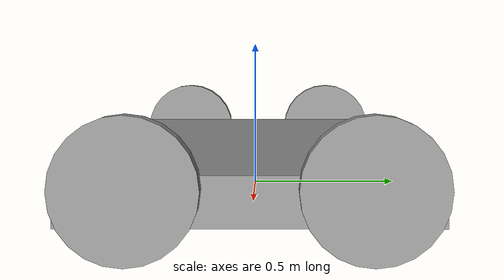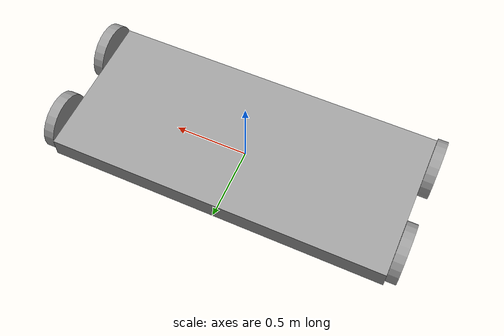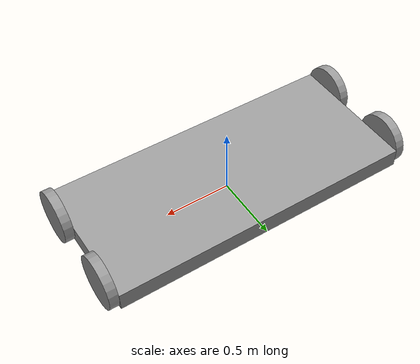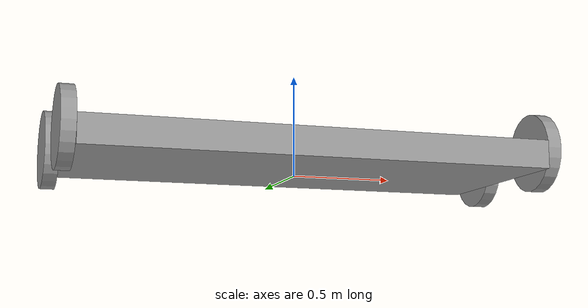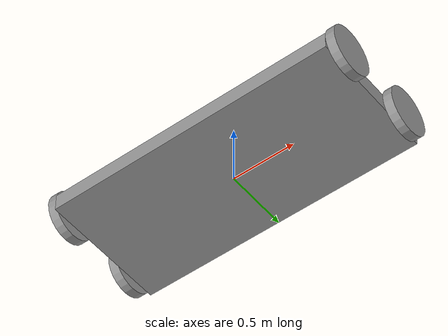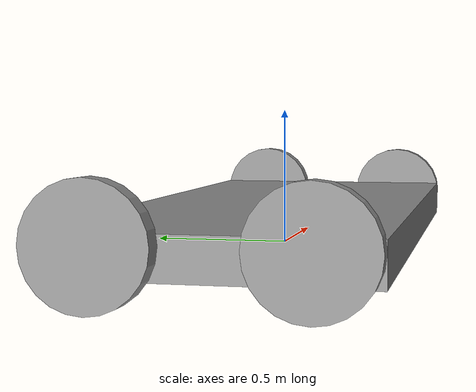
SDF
<?xml version='1.0'?>
<sdf version='1.7'>
  <model name='cart'>
    <link name='Cart'>
      <inertial>
        <mass>0.323225</mass>
        <inertia>
          <ixx>0.0288014</ixx>
          <ixy>0</ixy>
          <ixz>0</ixz>
          <iyy>0.139331</iyy>
          <iyz>0</iyz>
          <izz>0.167093</izz>
        </inertia>
        <pose>0 0 0 0 -0 0</pose>
      </inertial>
      <pose>1e-06 -0 0.087098 0 -0 0</pose>
      <gravity>1</gravity>
      <self_collide>0</self_collide>
      <kinematic>0</kinematic>
      <enable_wind>0</enable_wind>
      <visual name='visual'>
        <pose>0 0 0 0 -0 0</pose>
        <geometry>
          <box>
            <size>2.27013 1.02468 0.138944</size>
          </box>
        </geometry>
        <material>
          <lighting>1</lighting>
          <script>
            <uri>file://media/materials/scripts/gazebo.material</uri>
            <name>Gazebo/Grey</name>
          </script>
          <shader type='pixel'>
            <normal_map>__default__</normal_map>
          </shader>
          <ambient>0.3 0.3 0.3 1</ambient>
          <diffuse>0.7 0.7 0.7 1</diffuse>
          <specular>0.01 0.01 0.01 1</specular>
          <emissive>0 0 0 1</emissive>
        </material>
        <transparency>0</transparency>
        <cast_shadows>1</cast_shadows>
      </visual>
      <collision name='collision'>
        <laser_retro>0</laser_retro>
        <max_contacts>10</max_contacts>
        <pose>0 0 0 0 -0 0</pose>
        <geometry>
          <box>
            <size>2.27013 1.02468 0.138944</size>
          </box>
        </geometry>
        <surface>
          <friction>
            <ode>
              <mu>1</mu>
              <mu2>1</mu2>
              <fdir1>0 0 0</fdir1>
              <slip1>0</slip1>
              <slip2>0</slip2>
            </ode>
            <torsional>
              <coefficient>1</coefficient>
              <patch_radius>0</patch_radius>
              <surface_radius>0</surface_radius>
              <use_patch_radius>1</use_patch_radius>
              <ode>
                <slip>0</slip>
              </ode>
            </torsional>
          </friction>
          <bounce>
            <restitution_coefficient>0</restitution_coefficient>
            <threshold>1e+06</threshold>
          </bounce>
          <contact>
            <collide_without_contact>0</collide_without_contact>
            <collide_without_contact_bitmask>1</collide_without_contact_bitmask>
            <collide_bitmask>1</collide_bitmask>
            <ode>
              <soft_cfm>0</soft_cfm>
              <soft_erp>0.2</soft_erp>
              <kp>1e+13</kp>
              <kd>1</kd>
              <max_vel>0.01</max_vel>
              <min_depth>0</min_depth>
            </ode>
            <bullet>
              <split_impulse>1</split_impulse>
              <split_impulse_penetration_threshold>-0.01</split_impulse_penetration_threshold>
              <soft_cfm>0</soft_cfm>
              <soft_erp>0.2</soft_erp>
              <kp>1e+13</kp>
              <kd>1</kd>
            </bullet>
          </contact>
        </surface>
      </collision>
    </link>
    <link name='LeftWheelFree'>
      <inertial>
        <mass>0.0104167</mass>
        <inertia>
          <ixx>0.000101722</ixx>
          <ixy>0</ixy>
          <ixz>0</ixz>
          <iyy>0.000101722</iyy>
          <iyz>0</iyz>
          <izz>0.000195047</izz>
        </inertia>
        <pose>0 0 0 0 -0 0</pose>
      </inertial>
      <pose>1.16984 0.318823 0.122361 1e-06 1.57079 1e-06</pose>
      <gravity>1</gravity>
      <self_collide>0</self_collide>
      <kinematic>0</kinematic>
      <enable_wind>0</enable_wind>
      <visual name='visual'>
        <pose>0 0 0 0 -0 0</pose>
        <geometry>
          <cylinder>
            <radius>0.193517</radius>
            <length>0.0695489</length>
          </cylinder>
        </geometry>
        <material>
          <lighting>1</lighting>
          <script>
            <uri>file://media/materials/scripts/gazebo.material</uri>
            <name>Gazebo/Grey</name>
          </script>
          <shader type='pixel'>
            <normal_map>__default__</normal_map>
          </shader>
          <ambient>0.3 0.3 0.3 1</ambient>
          <diffuse>0.7 0.7 0.7 1</diffuse>
          <specular>0.01 0.01 0.01 1</specular>
          <emissive>0 0 0 1</emissive>
        </material>
        <transparency>0</transparency>
        <cast_shadows>1</cast_shadows>
      </visual>
      <collision name='collision'>
        <laser_retro>0</laser_retro>
        <max_contacts>10</max_contacts>
        <pose>0 0 0 0 -0 0</pose>
        <geometry>
          <cylinder>
            <radius>0.193517</radius>
            <length>0.069549</length>
          </cylinder>
        </geometry>
        <surface>
          <friction>
            <ode>
              <mu>1</mu>
              <mu2>1</mu2>
              <fdir1>0 0 0</fdir1>
              <slip1>0</slip1>
              <slip2>0</slip2>
            </ode>
            <torsional>
              <coefficient>1</coefficient>
              <patch_radius>0</patch_radius>
              <surface_radius>0</surface_radius>
              <use_patch_radius>1</use_patch_radius>
              <ode>
                <slip>0</slip>
              </ode>
            </torsional>
          </friction>
          <bounce>
            <restitution_coefficient>0</restitution_coefficient>
            <threshold>1e+06</threshold>
          </bounce>
          <contact>
            <collide_without_contact>0</collide_without_contact>
            <collide_without_contact_bitmask>1</collide_without_contact_bitmask>
            <collide_bitmask>1</collide_bitmask>
            <ode>
              <soft_cfm>0</soft_cfm>
              <soft_erp>0.2</soft_erp>
              <kp>1e+13</kp>
              <kd>1</kd>
              <max_vel>0.01</max_vel>
              <min_depth>0</min_depth>
            </ode>
            <bullet>
              <split_impulse>1</split_impulse>
              <split_impulse_penetration_threshold>-0.01</split_impulse_penetration_threshold>
              <soft_cfm>0</soft_cfm>
              <soft_erp>0.2</soft_erp>
              <kp>1e+13</kp>
              <kd>1</kd>
            </bullet>
          </contact>
        </surface>
      </collision>
    </link>
    <link name='LeftWheelMotor'>
      <inertial>
        <mass>0.0104167</mass>
        <inertia>
          <ixx>0.000101722</ixx>
          <ixy>0</ixy>
          <ixz>0</ixz>
          <iyy>0.000101722</iyy>
          <iyz>0</iyz>
          <izz>0.000195047</izz>
        </inertia>
        <pose>0 0 0 0 -0 0</pose>
      </inertial>
      <pose>1.16984 -0.318823 0.122362 1e-06 1.57079 1e-06</pose>
      <gravity>1</gravity>
      <self_collide>0</self_collide>
      <kinematic>0</kinematic>
      <enable_wind>0</enable_wind>
      <visual name='visual'>
        <pose>0 0 0 0 -0 0</pose>
        <geometry>
          <cylinder>
            <radius>0.193517</radius>
            <length>0.0695489</length>
          </cylinder>
        </geometry>
        <material>
          <lighting>1</lighting>
          <script>
            <uri>file://media/materials/scripts/gazebo.material</uri>
            <name>Gazebo/Grey</name>
          </script>
          <shader type='pixel'>
            <normal_map>__default__</normal_map>
          </shader>
          <ambient>0.3 0.3 0.3 1</ambient>
          <diffuse>0.7 0.7 0.7 1</diffuse>
          <specular>0.01 0.01 0.01 1</specular>
          <emissive>0 0 0 1</emissive>
        </material>
        <transparency>0</transparency>
        <cast_shadows>1</cast_shadows>
      </visual>
      <collision name='collision'>
        <laser_retro>0</laser_retro>
        <max_contacts>10</max_contacts>
        <pose>0 0 0 0 -0 0</pose>
        <geometry>
          <cylinder>
            <radius>0.193517</radius>
            <length>0.069549</length>
          </cylinder>
        </geometry>
        <surface>
          <friction>
            <ode>
              <mu>1</mu>
              <mu2>1</mu2>
              <fdir1>0 0 0</fdir1>
              <slip1>0</slip1>
              <slip2>0</slip2>
            </ode>
            <torsional>
              <coefficient>1</coefficient>
              <patch_radius>0</patch_radius>
              <surface_radius>0</surface_radius>
              <use_patch_radius>1</use_patch_radius>
              <ode>
                <slip>0</slip>
              </ode>
            </torsional>
          </friction>
          <bounce>
            <restitution_coefficient>0</restitution_coefficient>
            <threshold>1e+06</threshold>
          </bounce>
          <contact>
            <collide_without_contact>0</collide_without_contact>
            <collide_without_contact_bitmask>1</collide_without_contact_bitmask>
            <collide_bitmask>1</collide_bitmask>
            <ode>
              <soft_cfm>0</soft_cfm>
              <soft_erp>0.2</soft_erp>
              <kp>1e+13</kp>
              <kd>1</kd>
              <max_vel>0.01</max_vel>
              <min_depth>0</min_depth>
            </ode>
            <bullet>
              <split_impulse>1</split_impulse>
              <split_impulse_penetration_threshold>-0.01</split_impulse_penetration_threshold>
              <soft_cfm>0</soft_cfm>
              <soft_erp>0.2</soft_erp>
              <kp>1e+13</kp>
              <kd>1</kd>
            </bullet>
          </contact>
        </surface>
      </collision>
    </link>
    <link name='RightWheelFree'>
      <inertial>
        <mass>0.0104167</mass>
        <inertia>
          <ixx>0.000101722</ixx>
          <ixy>0</ixy>
          <ixz>0</ixz>
          <iyy>0.000101722</iyy>
          <iyz>0</iyz>
          <izz>0.000195047</izz>
        </inertia>
        <pose>0 0 0 0 -0 0</pose>
      </inertial>
      <pose>-1.16984 0.318823 0.122362 1e-06 1.57079 1e-06</pose>
      <gravity>1</gravity>
      <self_collide>0</self_collide>
      <kinematic>0</kinematic>
      <enable_wind>0</enable_wind>
      <visual name='visual'>
        <pose>0 0 0 0 -0 0</pose>
        <geometry>
          <cylinder>
            <radius>0.193517</radius>
            <length>0.0695489</length>
          </cylinder>
        </geometry>
        <material>
          <lighting>1</lighting>
          <script>
            <uri>file://media/materials/scripts/gazebo.material</uri>
            <name>Gazebo/Grey</name>
          </script>
          <shader type='pixel'>
            <normal_map>__default__</normal_map>
          </shader>
          <ambient>0.3 0.3 0.3 1</ambient>
          <diffuse>0.7 0.7 0.7 1</diffuse>
          <specular>0.01 0.01 0.01 1</specular>
          <emissive>0 0 0 1</emissive>
        </material>
        <transparency>0</transparency>
        <cast_shadows>1</cast_shadows>
      </visual>
      <collision name='collision'>
        <laser_retro>0</laser_retro>
        <max_contacts>10</max_contacts>
        <pose>0 0 0 0 -0 0</pose>
        <geometry>
          <cylinder>
            <radius>0.193517</radius>
            <length>0.069549</length>
          </cylinder>
        </geometry>
        <surface>
          <friction>
            <ode>
              <mu>1</mu>
              <mu2>1</mu2>
              <fdir1>0 0 0</fdir1>
              <slip1>0</slip1>
              <slip2>0</slip2>
            </ode>
            <torsional>
              <coefficient>1</coefficient>
              <patch_radius>0</patch_radius>
              <surface_radius>0</surface_radius>
              <use_patch_radius>1</use_patch_radius>
              <ode>
                <slip>0</slip>
              </ode>
            </torsional>
          </friction>
          <bounce>
            <restitution_coefficient>0</restitution_coefficient>
            <threshold>1e+06</threshold>
          </bounce>
          <contact>
            <collide_without_contact>0</collide_without_contact>
            <collide_without_contact_bitmask>1</collide_without_contact_bitmask>
            <collide_bitmask>1</collide_bitmask>
            <ode>
              <soft_cfm>0</soft_cfm>
              <soft_erp>0.2</soft_erp>
              <kp>1e+13</kp>
              <kd>1</kd>
              <max_vel>0.01</max_vel>
              <min_depth>0</min_depth>
            </ode>
            <bullet>
              <split_impulse>1</split_impulse>
              <split_impulse_penetration_threshold>-0.01</split_impulse_penetration_threshold>
              <soft_cfm>0</soft_cfm>
              <soft_erp>0.2</soft_erp>
              <kp>1e+13</kp>
              <kd>1</kd>
            </bullet>
          </contact>
        </surface>
      </collision>
    </link>
    <link name='RightWheelMotor'>
      <inertial>
        <mass>0.0104167</mass>
        <inertia>
          <ixx>0.000101722</ixx>
          <ixy>0</ixy>
          <ixz>0</ixz>
          <iyy>0.000101722</iyy>
          <iyz>0</iyz>
          <izz>0.000195047</izz>
        </inertia>
        <pose>0 0 0 0 -0 0</pose>
      </inertial>
      <pose>-1.16984 -0.318823 0.122362 1e-06 1.57079 1e-06</pose>
      <gravity>1</gravity>
      <self_collide>0</self_collide>
      <kinematic>0</kinematic>
      <enable_wind>0</enable_wind>
      <visual name='visual'>
        <pose>0 0 0 0 -0 0</pose>
        <geometry>
          <cylinder>
            <radius>0.193517</radius>
            <length>0.0695489</length>
          </cylinder>
        </geometry>
        <material>
          <lighting>1</lighting>
          <script>
            <uri>file://media/materials/scripts/gazebo.material</uri>
            <name>Gazebo/Grey</name>
          </script>
          <shader type='pixel'>
            <normal_map>__default__</normal_map>
          </shader>
          <ambient>0.3 0.3 0.3 1</ambient>
          <diffuse>0.7 0.7 0.7 1</diffuse>
          <specular>0.01 0.01 0.01 1</specular>
          <emissive>0 0 0 1</emissive>
        </material>
        <transparency>0</transparency>
        <cast_shadows>1</cast_shadows>
      </visual>
      <collision name='collision'>
        <laser_retro>0</laser_retro>
        <max_contacts>10</max_contacts>
        <pose>0 0 0 0 -0 0</pose>
        <geometry>
          <cylinder>
            <radius>0.193517</radius>
            <length>0.069549</length>
          </cylinder>
        </geometry>
        <surface>
          <friction>
            <ode>
              <mu>1</mu>
              <mu2>1</mu2>
              <fdir1>0 0 0</fdir1>
              <slip1>0</slip1>
              <slip2>0</slip2>
            </ode>
            <torsional>
              <coefficient>1</coefficient>
              <patch_radius>0</patch_radius>
              <surface_radius>0</surface_radius>
              <use_patch_radius>1</use_patch_radius>
              <ode>
                <slip>0</slip>
              </ode>
            </torsional>
          </friction>
          <bounce>
            <restitution_coefficient>0</restitution_coefficient>
            <threshold>1e+06</threshold>
          </bounce>
          <contact>
            <collide_without_contact>0</collide_without_contact>
            <collide_without_contact_bitmask>1</collide_without_contact_bitmask>
            <collide_bitmask>1</collide_bitmask>
            <ode>
              <soft_cfm>0</soft_cfm>
              <soft_erp>0.2</soft_erp>
              <kp>1e+13</kp>
              <kd>1</kd>
              <max_vel>0.01</max_vel>
              <min_depth>0</min_depth>
            </ode>
            <bullet>
              <split_impulse>1</split_impulse>
              <split_impulse_penetration_threshold>-0.01</split_impulse_penetration_threshold>
              <soft_cfm>0</soft_cfm>
              <soft_erp>0.2</soft_erp>
              <kp>1e+13</kp>
              <kd>1</kd>
            </bullet>
          </contact>
        </surface>
      </collision>
    </link>
    <joint name='Cart_LeftWheelFree' type='revolute'>
      <parent>Cart</parent>
      <child>LeftWheelFree</child>
      <pose>0 0 0 0 -0 0</pose>
      <axis>
        <xyz>0 0 1</xyz>
        <limit>
          <lower>-1.79769e+308</lower>
          <upper>1.79769e+308</upper>
          <effort>-1</effort>
          <velocity>-1</velocity>
        </limit>
        <dynamics>
          <spring_reference>0</spring_reference>
          <spring_stiffness>0</spring_stiffness>
          <damping>0</damping>
          <friction>0</friction>
        </dynamics>
      </axis>
      <physics>
        <ode>
          <limit>
            <cfm>0</cfm>
            <erp>0.2</erp>
          </limit>
          <suspension>
            <cfm>0</cfm>
            <erp>0.2</erp>
          </suspension>
        </ode>
      </physics>
    </joint>
    <joint name='Cart_LeftWheelMotor' type='revolute'>
      <parent>Cart</parent>
      <child>LeftWheelMotor</child>
      <pose>0 0 0 0 -0 0</pose>
      <axis>
        <xyz>0 0 1</xyz>
        <limit>
          <lower>-1.79769e+308</lower>
          <upper>1.79769e+308</upper>
          <effort>-1</effort>
          <velocity>-1</velocity>
        </limit>
        <dynamics>
          <spring_reference>0</spring_reference>
          <spring_stiffness>0</spring_stiffness>
          <damping>0</damping>
          <friction>0</friction>
        </dynamics>
      </axis>
      <physics>
        <ode>
          <limit>
            <cfm>0</cfm>
            <erp>0.2</erp>
          </limit>
          <suspension>
            <cfm>0</cfm>
            <erp>0.2</erp>
          </suspension>
        </ode>
      </physics>
    </joint>
    <joint name='Cart_RightWheelFree' type='revolute'>
      <parent>Cart</parent>
      <child>RightWheelFree</child>
      <pose>0 0 0 0 -0 0</pose>
      <axis>
        <xyz>0 0 1</xyz>
        <limit>
          <lower>-1.79769e+308</lower>
          <upper>1.79769e+308</upper>
          <effort>-1</effort>
          <velocity>-1</velocity>
        </limit>
        <dynamics>
          <spring_reference>0</spring_reference>
          <spring_stiffness>0</spring_stiffness>
          <damping>0</damping>
          <friction>0</friction>
        </dynamics>
      </axis>
      <physics>
        <ode>
          <limit>
            <cfm>0</cfm>
            <erp>0.2</erp>
          </limit>
          <suspension>
            <cfm>0</cfm>
            <erp>0.2</erp>
          </suspension>
        </ode>
      </physics>
    </joint>
    <joint name='Cart_RightWheelMotor' type='revolute'>
      <parent>Cart</parent>
      <child>RightWheelMotor</child>
      <pose>0 0 0 0 -0 0</pose>
      <axis>
        <xyz>0 0 1</xyz>
        <limit>
          <lower>-1.79769e+308</lower>
          <upper>1.79769e+308</upper>
          <effort>-1</effort>
          <velocity>-1</velocity>
        </limit>
        <dynamics>
          <spring_reference>0</spring_reference>
          <spring_stiffness>0</spring_stiffness>
          <damping>0</damping>
          <friction>0</friction>
        </dynamics>
      </axis>
      <physics>
        <ode>
          <limit>
            <cfm>0</cfm>
            <erp>0.2</erp>
          </limit>
          <suspension>
            <cfm>0</cfm>
            <erp>0.2</erp>
          </suspension>
        </ode>
      </physics>
    </joint>
    <static>0</static>
    <allow_auto_disable>1</allow_auto_disable>
    <plugin name='differential_drive_controller' filename='libgazebo_ros_diff_drive.so'>
      <ros>
        <namespace>/cart</namespace>
      </ros>
      <left_joint>Bridge_LeftWheelMotor</left_joint>
      <right_joint>Bridge_RightWheelMotor</right_joint>
      <wheel_separation>1</wheel_separation>
      <wheel_diameter>0.3</wheel_diameter>
      <publish_wheel_tf>1</publish_wheel_tf>
      <odometryTopic>odom</odometryTopic>
      <odometryFrame>odom</odometryFrame>
      <robotBaseFrame>base_footprint</robotBaseFrame>
      <publish_odom>1</publish_odom>
      <publish_odom_tf>1</publish_odom_tf>
      <publish_wheel_tf>1</publish_wheel_tf>
    </plugin>
  </model>
</sdf>
